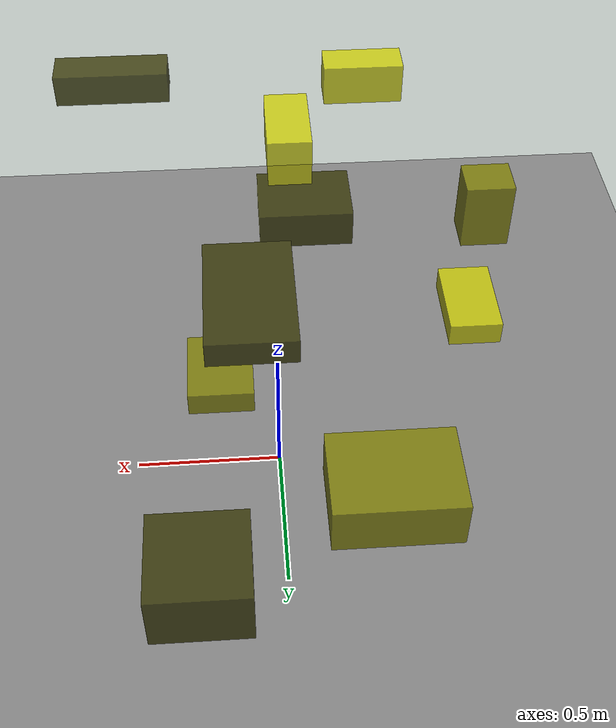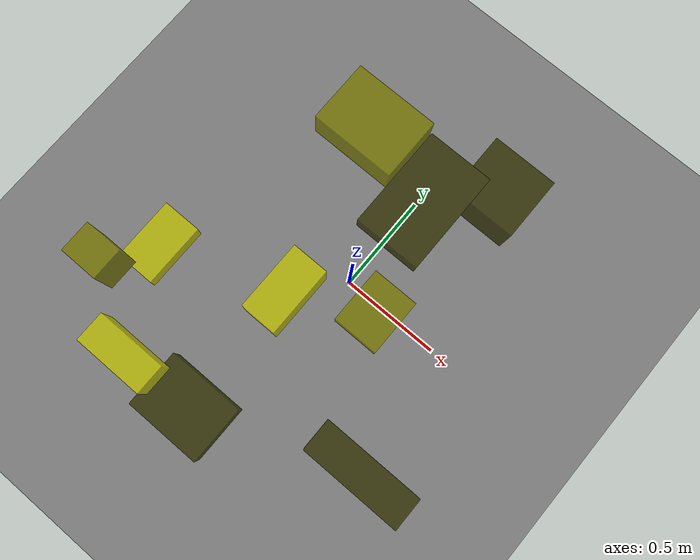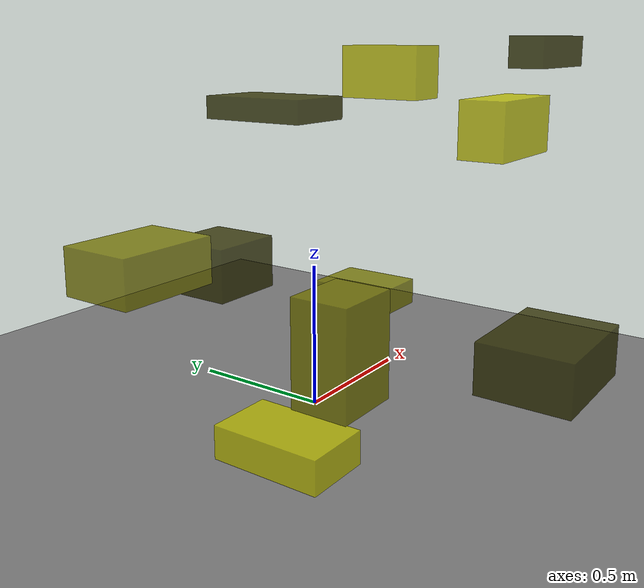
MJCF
<?xml version="1.0"?>
<mujoco model="obstacle_scene">
  <compiler angle="radian" coordinate="local"/>
  <option timestep="0.001" gravity="0 0 -9.81"/>

  <asset>
    <material name="obstacle_mat" rgba="0.8 0.8 0.0 0.8"/>
    <material name="ground_mat" rgba="0.5 0.5 0.5 1"/>
  </asset>

  <worldbody>
    <!-- Ground plane -->
    <geom name="ground" type="plane" size="3 3 0.1" material="ground_mat"/>

    <!-- Obstacles -->
    <body name="obstacle_0" pos="-0.146776 -0.880926 0.414882">
      <geom name="obs_0" type="box" size="0.175803 0.132182 0.073564" rgba="0.2 0.2 0.0 0.8"/>
    </body>
    <body name="obstacle_1" pos="-0.785795 -0.645992 0.590992">
      <geom name="obs_1" type="box" size="0.085665 0.072153 0.128721" rgba="0.5 0.5 0.0 0.8"/>
    </body>
    <body name="obstacle_2" pos="-0.336966 -0.811163 1.049640">
      <geom name="obs_2" type="box" size="0.132694 0.057105 0.069513" rgba="0.8 0.8 0.0 0.8"/>
    </body>
    <body name="obstacle_3" pos="0.483032 -0.591861 1.213406">
      <geom name="obs_3" type="box" size="0.175929 0.057284 0.050389" rgba="0.2 0.2 0.0 0.8"/>
    </body>
    <body name="obstacle_4" pos="0.191764 -0.079715 0.375084">
      <geom name="obs_4" type="box" size="0.109359 0.133785 0.043615" rgba="0.5 0.5 0.0 0.8"/>
    </body>
    <body name="obstacle_5" pos="-0.728018 -0.447899 0.280265">
      <geom name="obs_5" type="box" size="0.093653 0.154134 0.045234" rgba="0.8 0.8 0.0 0.8"/>
    </body>
    <body name="obstacle_6" pos="0.086048 0.236186 1.018943">
      <geom name="obs_6" type="box" size="0.128242 0.201295 0.040470" rgba="0.2 0.2 0.0 0.8"/>
    </body>
    <body name="obstacle_7" pos="-0.317484 0.512228 0.491037">
      <geom name="obs_7" type="box" size="0.198769 0.147293 0.087411" rgba="0.5 0.5 0.0 0.8"/>
    </body>
    <body name="obstacle_8" pos="-0.054079 -0.318859 1.159226">
      <geom name="obs_8" type="box" size="0.065712 0.125487 0.076686" rgba="0.8 0.8 0.0 0.8"/>
    </body>
    <body name="obstacle_9" pos="0.268740 0.682140 0.342383">
      <geom name="obs_9" type="box" size="0.156339 0.150537 0.108993" rgba="0.2 0.2 0.0 0.8"/>
    </body>
  </worldbody>
</mujoco>
